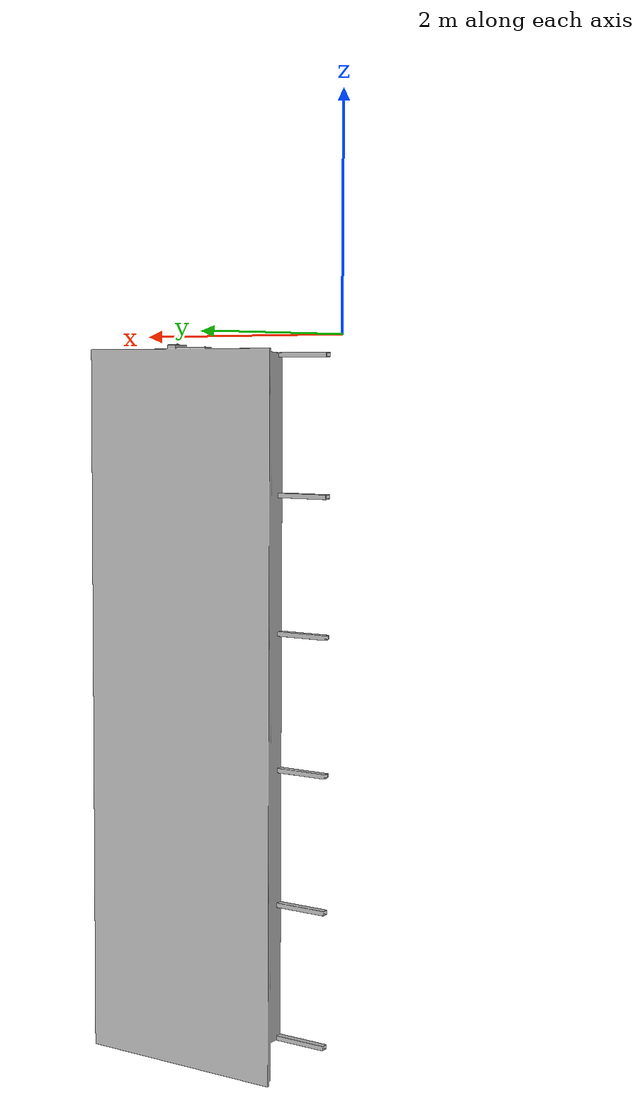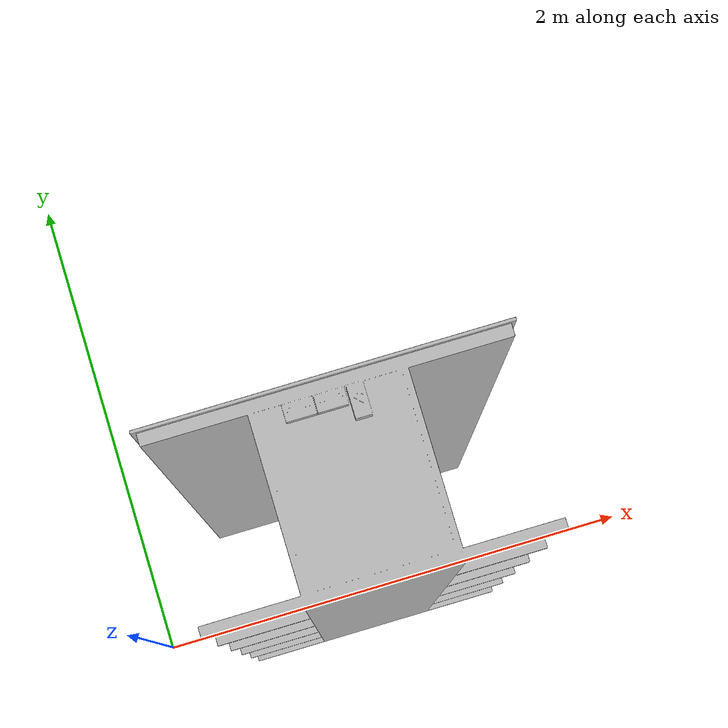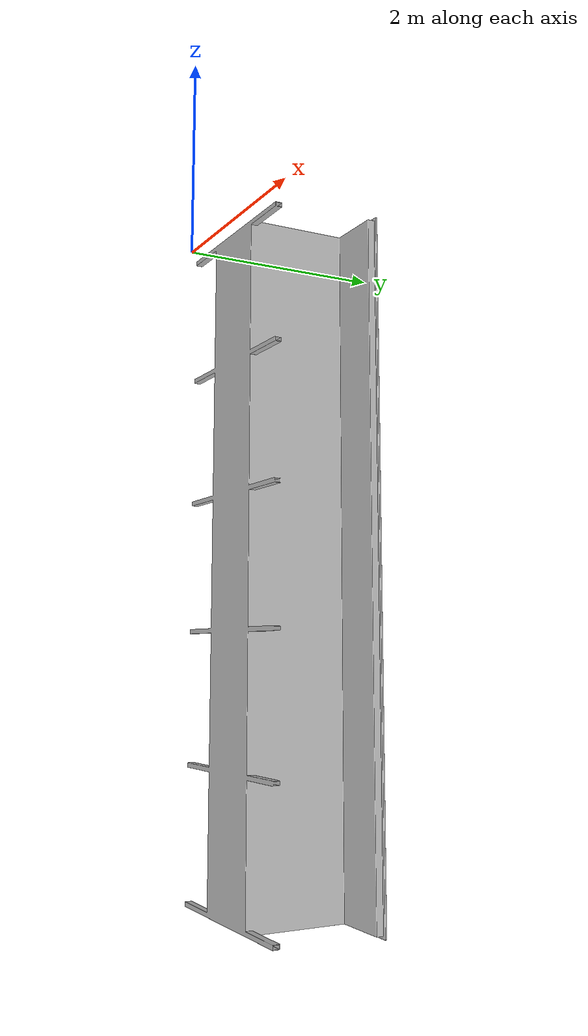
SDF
<?xml version="1.0" ?>
<sdf version="1.6">
  <model name="fyp_projectlab5">
    <pose>0 0 0 0 0 0</pose>
    <static>true</static>
    <link name="body">
      <visual name="visual">
        <geometry>
          <mesh><uri>model://midtable2/meshes/midtable2.dae</uri></mesh>
        </geometry>
      </visual>
      <collision name="collision">
        <geometry>
	  <mesh><uri>model://midtable2/meshes/midtable2.dae</uri></mesh>
        </geometry>
      </collision>
    </link>
  </model>
</sdf>
